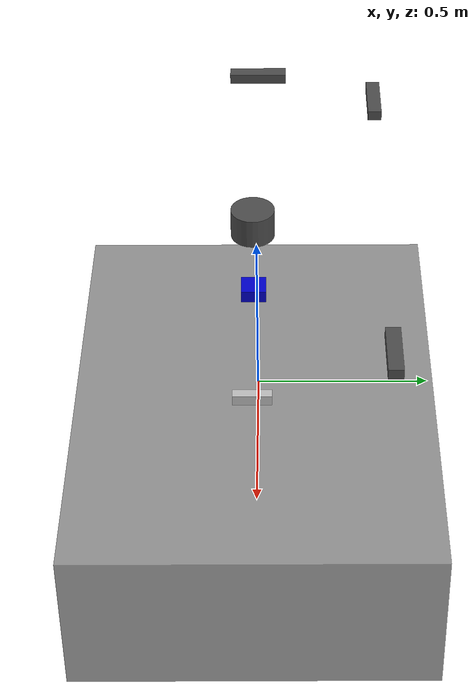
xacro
<?xml version="1.0"?>
<robot xmlns:xacro="http://www.ros.org/wiki/xacro" name="avros">

  <!-- Vehicle parameters -->
  <xacro:property name="wheelbase" value="1.23"/>
  <xacro:property name="track_width" value="0.9"/>

  <!-- base_link: center of rear axle at ground level               -->
  <link name="base_link">
    <visual>
      <geometry>
        <box size="${wheelbase} ${track_width} 0.4"/>
      </geometry>
      <origin xyz="${wheelbase/2} 0 0.3" rpy="0 0 0"/>
      <material name="grey">
        <color rgba="0.5 0.5 0.5 0.8"/>
      </material>
    </visual>
    <collision>
      <geometry>
        <box size="${wheelbase} ${track_width} 0.4"/>
      </geometry>
      <origin xyz="${wheelbase/2} 0 0.3" rpy="0 0 0"/>
    </collision>
    <inertial>
      <mass value="150.0"/>
      <inertia ixx="10.0" ixy="0" ixz="0" iyy="20.0" iyz="0" izz="25.0"/>
    </inertial>
  </link>

  <!-- base_footprint: ground projection of base_link               -->
  <link name="base_footprint"/>
  <joint name="base_footprint_joint" type="fixed">
    <parent link="base_link"/>
    <child link="base_footprint"/>
    <origin xyz="0 0 0" rpy="0 0 0"/>
  </joint>

  <!-- IMU: Xsens MTi-680G                                         -->
  <!-- TODO: Measure exact mount position on real vehicle           -->
  <link name="imu_link">
    <visual>
      <geometry>
        <box size="0.06 0.06 0.03"/>
      </geometry>
      <material name="blue">
        <color rgba="0 0 0.8 1"/>
      </material>
    </visual>
  </link>
  <joint name="imu_joint" type="fixed">
    <parent link="base_link"/>
    <child link="imu_link"/>
    <!-- TODO: Measure on vehicle. Approximate: centered, roof height -->
    <origin xyz="0.6 0.0 0.8" rpy="0 0 0"/>
  </joint>

  <!-- LiDAR: Velodyne VLP-16                                      -->
  <!-- TODO: Measure exact mount position on real vehicle           -->
  <link name="velodyne">
    <visual>
      <geometry>
        <cylinder radius="0.052" length="0.072"/>
      </geometry>
      <material name="dark_grey">
        <color rgba="0.3 0.3 0.3 1"/>
      </material>
    </visual>
  </link>
  <joint name="velodyne_joint" type="fixed">
    <parent link="base_link"/>
    <child link="velodyne"/>
    <!-- TODO: Measure on vehicle. Approximate: centered, above roof -->
    <origin xyz="0.6 0.0 1.0" rpy="0 0 0"/>
  </joint>

  <!-- Camera: Intel RealSense D435i                                -->
  <!-- TODO: Measure exact mount position on real vehicle           -->
  <link name="camera_link">
    <visual>
      <geometry>
        <box size="0.025 0.09 0.025"/>
      </geometry>
      <material name="silver">
        <color rgba="0.75 0.75 0.75 1"/>
      </material>
    </visual>
  </link>
  <joint name="camera_joint" type="fixed">
    <parent link="base_link"/>
    <child link="camera_link"/>
    <!-- TODO: Measure on vehicle. Approximate: front, roof height -->
    <origin xyz="1.0 0.0 0.8" rpy="0 0 0"/>
  </joint>

  <!-- Camera: ZED X Left (GMSL)                                    -->
  <!-- TODO: Measure exact mount position on real vehicle           -->
  <link name="zed_left_camera_center">
    <visual>
      <geometry>
        <box size="0.04 0.17 0.03"/>
      </geometry>
      <material name="dark_grey"/>
    </visual>
  </link>
  <joint name="zed_left_joint" type="fixed">
    <parent link="base_link"/>
    <child link="zed_left_camera_center"/>
    <!-- TODO: Measure on vehicle. Approximate: left side, facing left -->
    <origin xyz="-0.6 0.35 0.6" rpy="0 0 1.5708"/>
  </joint>

  <!-- Camera: ZED X Right (GMSL)                                   -->
  <!-- TODO: Measure exact mount position on real vehicle           -->
  <link name="zed_right_camera_center">
    <visual>
      <geometry>
        <box size="0.04 0.17 0.03"/>
      </geometry>
      <material name="dark_grey"/>
    </visual>
  </link>
  <joint name="zed_right_joint" type="fixed">
    <parent link="base_link"/>
    <child link="zed_right_camera_center"/>
    <!-- TODO: Measure on vehicle. Approximate: right side, facing right -->
    <origin xyz="0.6 0.35 0.6" rpy="0 0 -1.5708"/>
  </joint>

  <!-- Camera: ZED X Back (GMSL)                                    -->
  <!-- TODO: Measure exact mount position on real vehicle           -->
  <link name="zed_back_camera_center">
    <visual>
      <geometry>
        <box size="0.04 0.17 0.03"/>
      </geometry>
      <material name="dark_grey"/>
    </visual>
  </link>
  <joint name="zed_back_joint" type="fixed">
    <parent link="base_link"/>
    <child link="zed_back_camera_center"/>
    <!-- TODO: Measure on vehicle. Approximate: rear center, facing back -->
    <origin xyz="-0.75 0.0 0.6" rpy="0 0 3.14159"/>
  </joint>

</robot>
